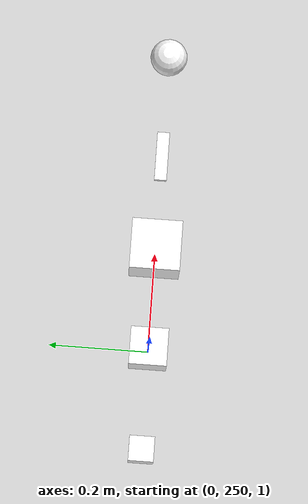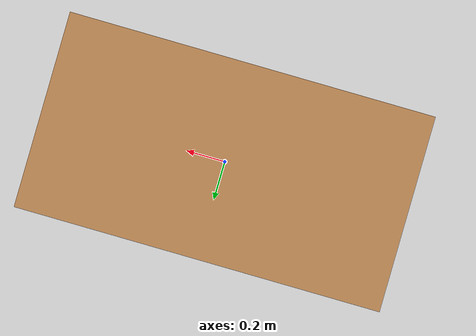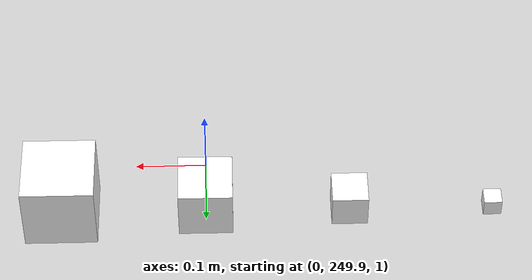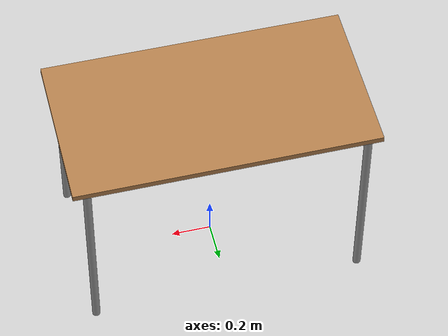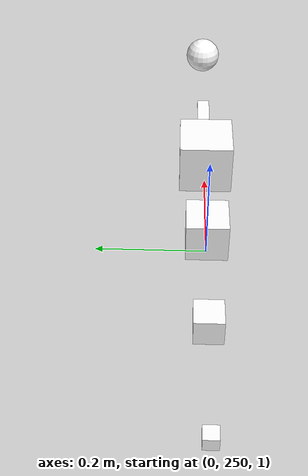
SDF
<?xml version="1.0" ?>
<sdf version="1.5">
  <world name="default">
    <!-- A global light source -->
    <include>
      <uri>model://sun</uri>
    </include>

    <!-- A ground plane -->
    <include>
      <uri>model://ground_plane</uri>
    </include>

    <include>
      <uri>model://table</uri>
    </include>

    <include>
      <uri>model://cricket_ball</uri>
      <pose> 0.6 250 1.015 0 0 0</pose>
    </include>

    <include>
      <uri>model://wood_block_10_2_1cm</uri>
      <pose> 0.4 250 1.015 0 0 0</pose>
    </include>

    <include>
      <uri>model://wood_cube_10cm</uri>
      <pose> 0.2 250 1.015 0 0 0</pose>
    </include>

    <include>
      <uri>model://wood_cube_7_5cm</uri>
      <pose> 0.0 250 1.015 0 0 0</pose>
    </include>

    <include>
      <uri>model://wood_cube_5cm</uri>
      <pose>-0.2 250 1.015 0 0 0</pose>
    </include>

    <include>
      <uri>model://wood_cube_2_5cm</uri>
      <pose>-0.4 250 1.015 0 0 0</pose>
    </include>

    <plugin name="arrange_plugin" filename="libArrangePlugin.so">
      <model_name>cricket_ball</model_name>
      <model_name>wood_block_10_2_1cm</model_name>
      <model_name>wood_cube_10cm</model_name>
      <model_name>wood_cube_7_5cm</model_name>
      <model_name>wood_cube_5cm</model_name>
      <model_name>wood_cube_2_5cm</model_name>
      <initial_arrangement>wood_blocks_stack</initial_arrangement>
      <topic_name>/gazebo/arat/control</topic_name>
      <arrangement name="default">
        <pose model="cricket_ball"       > 0.6 -0.25 1.015 0 0 0</pose>
        <pose model="wood_block_10_2_1cm"> 0.4 -0.25 1.015 0 0 0</pose>
        <pose model="wood_cube_10cm"     > 0.2 -0.25 1.015 0 0 0</pose>
        <pose model="wood_cube_7_5cm"    > 0.0 -0.25 1.015 0 0 0</pose>
        <pose model="wood_cube_5cm"      >-0.2 -0.25 1.015 0 0 0</pose>
        <pose model="wood_cube_2_5cm"    >-0.4 -0.25 1.015 0 0 0</pose>
      </arrangement>
      <arrangement name="cricket_ball">
        <pose model="cricket_ball"       > 0.6 -0.25 1.015 0 0 0</pose>
      </arrangement>
      <arrangement name="wood_blocks">
        <pose model="wood_block_10_2_1cm"> 0.4 -0.25 1.015 0 0 0</pose>
        <pose model="wood_cube_10cm"     > 0.2 -0.25 1.015 0 0 0</pose>
        <pose model="wood_cube_7_5cm"    > 0.0 -0.25 1.015 0 0 0</pose>
        <pose model="wood_cube_5cm"      >-0.2 -0.25 1.015 0 0 0</pose>
        <pose model="wood_cube_2_5cm"    >-0.4 -0.25 1.015 0 0 0</pose>
      </arrangement>
      <arrangement name="wood_blocks_stack">
        <pose model="wood_cube_10cm"     > 0.2 -0.25 1.015 0 0 0</pose>
        <pose model="wood_cube_7_5cm"    > 0.2 -0.25 1.115 0 0 0</pose>
        <pose model="wood_cube_5cm"      > 0.2 -0.25 1.215 0 0 0</pose>
        <pose model="wood_cube_2_5cm"    > 0.2 -0.25 1.315 0 0 0</pose>
        <pose model="wood_block_10_2_1cm"> 0.2 -0.25 1.415 0 0 0</pose>
      </arrangement>
    </plugin>
  </world>
</sdf>

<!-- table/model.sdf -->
<sdf version="1.5">
  <model name="table">
    <static>true</static>
    <link name="link">
      <collision name="surface">
        <pose>0 0 1.0 0 0 0</pose>
        <geometry>
          <box>
            <size>1.5 0.8 0.03</size>
          </box>
        </geometry>
        <surface>
          <friction>
            <ode>
              <mu>0.6</mu>
              <mu2>0.6</mu2>
            </ode>
          </friction>
        </surface>
      </collision>
      <visual name="visual1">
        <pose>0 0 1.0 0 0 0</pose>
        <geometry>
          <box>
            <size>1.5 0.8 0.03</size>
          </box>
        </geometry>
        <material>
          <script>
            <uri>model://media/materials/scripts/gazebo.material</uri>
            <name>Gazebo/Wood</name>
          </script>
        </material>
      </visual>
      <collision name="front_left_leg">
        <pose>0.68 0.38 0.5 0 0 0</pose>
        <geometry>
          <cylinder>
            <radius>0.02</radius>
            <length>1.0</length>
          </cylinder>
        </geometry>
      </collision>
      <visual name="front_left_leg">
        <pose>0.68 0.38 0.5 0 0 0</pose>
        <geometry>
          <cylinder>
            <radius>0.02</radius>
            <length>1.0</length>
          </cylinder>
        </geometry>
        <material>
          <script>
            <uri>model://media/materials/scripts/gazebo.material</uri>
            <name>Gazebo/Grey</name>
          </script>
        </material>
      </visual>
      <collision name="front_right_leg">
        <pose>0.68 -0.38 0.5 0 0 0</pose>
        <geometry>
          <cylinder>
            <radius>0.02</radius>
            <length>1.0</length>
          </cylinder>
        </geometry>
      </collision>
      <visual name="front_right_leg">
        <pose>0.68 -0.38 0.5 0 0 0</pose>
        <geometry>
          <cylinder>
            <radius>0.02</radius>
            <length>1.0</length>
          </cylinder>
        </geometry>
        <material>
          <script>
            <uri>model://media/materials/scripts/gazebo.material</uri>
            <name>Gazebo/Grey</name>
          </script>
        </material>
      </visual>
      <collision name="back_right_leg">
        <pose>-0.68 -0.38 0.5 0 0 0</pose>
        <geometry>
          <cylinder>
            <radius>0.02</radius>
            <length>1.0</length>
          </cylinder>
        </geometry>
      </collision>
      <visual name="back_right_leg">
        <pose>-0.68 -0.38 0.5 0 0 0</pose>
        <geometry>
          <cylinder>
            <radius>0.02</radius>
            <length>1.0</length>
          </cylinder>
        </geometry>
        <material>
          <script>
            <uri>model://media/materials/scripts/gazebo.material</uri>
            <name>Gazebo/Grey</name>
          </script>
        </material>
      </visual>
      <collision name="back_left_leg">
        <pose>-0.68 0.38 0.5 0 0 0</pose>
        <geometry>
          <cylinder>
            <radius>0.02</radius>
            <length>1.0</length>
          </cylinder>
        </geometry>
      </collision>
      <visual name="back_left_leg">
        <pose>-0.68 0.38 0.5 0 0 0</pose>
        <geometry>
          <cylinder>
            <radius>0.02</radius>
            <length>1.0</length>
          </cylinder>
        </geometry>
        <material>
          <script>
            <uri>model://media/materials/scripts/gazebo.material</uri>
            <name>Gazebo/Grey</name>
          </script>
        </material>
      </visual>
    </link>
  </model>
</sdf>

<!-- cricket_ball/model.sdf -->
<sdf version="1.5">
  <model name="cricket_ball">
    <link name="link">
      <pose>0 0 0.0375 0 0 0</pose>
      <inertial>
        <mass>0.1467</mass>
        <inertia>
          <ixx>8.251875e-05</ixx>
          <ixy>0</ixy>
          <ixz>0</ixz>
          <iyy>8.251875e-05</iyy>
          <iyz>0</iyz>
          <izz>8.251875e-05</izz>
        </inertia>
      </inertial>

      <collision name="collision">
        <geometry>
          <sphere>
            <radius>0.0375</radius>
          </sphere>
        </geometry>
        <surface>
          <contact>
            <!-- Red Pine coefficients for longitudinal axis of the wood
                 according to:
                 http://www.fpl.fs.fed.us/documnts/fplgtr/fplgtr113/ch04.pdf -->
            <poissons_ratio>0.347</poissons_ratio>
            <elastic_modulus>8.8e+09</elastic_modulus>
            <ode>
              <kp>100000</kp>
              <kd>100</kd>
              <max_vel>100.0</max_vel>
              <min_depth>0.001</min_depth>
            </ode>
          </contact>
          <friction>
            <torsional>
              <coefficient>1.0</coefficient>
              <use_patch_radius>0</use_patch_radius>
              <surface_radius>0.01</surface_radius>
            </torsional>
          </friction>
        </surface>
      </collision>

      <visual name="visual">
        <geometry>
          <sphere>
            <radius>0.0375</radius>
          </sphere>
        </geometry>
        <material><diffuse>1 1 1 1</diffuse><specular>0.1 0.1 0.1 1</specular></material>
      </visual>

      <!-- approximate rolling friction -->
      <velocity_decay>
        <linear>0.00</linear>
        <angular>0.005</angular>
      </velocity_decay>
    </link>
  </model>
</sdf>

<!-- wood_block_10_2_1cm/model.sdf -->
<sdf version="1.5">
  <model name="wood_block_10_2_1cm">
    <link name="link">
      <pose>0 0 0.005 0 0 0</pose>
      <inertial>
        <mass>0.0125</mass>
        <inertia>
          <ixx>7.552083333333335e-07</ixx>
          <ixy>0</ixy>
          <ixz>0</ixz>
          <iyy>1.0520833333333334e-05</iyy>
          <iyz>0</iyz>
          <izz>1.1067708333333336e-05</izz>
        </inertia>
      </inertial>

      <collision name="collision">
        <geometry>
          <box>
            <size>0.1 0.025 0.01</size>
          </box>
        </geometry>
        <surface>
          <contact>
            <!-- Red Pine coefficients for longitudinal axis of the wood
                 according to:
                 http://www.fpl.fs.fed.us/documnts/fplgtr/fplgtr113/ch04.pdf -->
            <poissons_ratio>0.347</poissons_ratio>
            <elastic_modulus>8.8e+09</elastic_modulus>
            <ode>
              <kp>100000</kp>
              <kd>1</kd>
              <max_vel>1.0</max_vel>
              <min_depth>0.001</min_depth>
            </ode>
          </contact>
          <friction>
            <torsional>
              <coefficient>1.0</coefficient>
              <use_patch_radius>0</use_patch_radius>
              <surface_radius>0.05</surface_radius>
            </torsional>
          </friction>
        </surface>
      </collision>

      <visual name="visual">
        <geometry>
          <box>
            <size>0.1 0.025 0.01</size>
          </box>
        </geometry>
        <material><diffuse>1 1 1 1</diffuse><specular>0.1 0.1 0.1 1</specular></material>
      </visual>

    </link>
  </model>
</sdf>

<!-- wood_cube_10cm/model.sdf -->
<sdf version="1.5">
  <model name="wood_cube_10cm">
    <link name="link">
      <pose>0 0 0.05 0 0 0</pose>
      <inertial>
        <mass>0.5167</mass>
        <inertia>
          <ixx>0.0008611666666666669</ixx>
          <ixy>0</ixy>
          <ixz>0</ixz>
          <iyy>0.0008611666666666669</iyy>
          <iyz>0</iyz>
          <izz>0.0008611666666666669</izz>
        </inertia>
      </inertial>

      <collision name="collision">
        <geometry>
          <box>
            <size>0.1 0.1 0.1</size>
          </box>
        </geometry>
        <surface>
          <contact>
            <!-- Red Pine coefficients for longitudinal axis of the wood
                 according to:
                 http://www.fpl.fs.fed.us/documnts/fplgtr/fplgtr113/ch04.pdf -->
            <poissons_ratio>0.347</poissons_ratio>
            <elastic_modulus>8.8e+09</elastic_modulus>
            <ode>
              <kp>100000</kp>
              <kd>100</kd>
              <max_vel>100.0</max_vel>
              <min_depth>0.001</min_depth>
            </ode>
          </contact>
          <friction>
            <torsional>
              <coefficient>1.0</coefficient>
              <use_patch_radius>0</use_patch_radius>
              <surface_radius>0.01</surface_radius>
            </torsional>
          </friction>
        </surface>
      </collision>

      <visual name="visual">
        <geometry>
          <box>
            <size>0.1 0.1 0.1</size>
          </box>
        </geometry>
        <material><diffuse>1 1 1 1</diffuse><specular>0.1 0.1 0.1 1</specular></material>
      </visual>

    </link>
  </model>
</sdf>

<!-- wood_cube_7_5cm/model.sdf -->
<sdf version="1.5">
  <model name="wood_cube_7_5cm">
    <link name="link">
      <pose>0 0 0.0375 0 0 0</pose>
      <inertial>
        <mass>0.2249</mass>
        <inertia>
          <ixx>0.00021084374999999999</ixx>
          <ixy>0</ixy>
          <ixz>0</ixz>
          <iyy>0.00021084374999999999</iyy>
          <iyz>0</iyz>
          <izz>0.00021084374999999999</izz>
        </inertia>
      </inertial>

      <collision name="collision">
        <geometry>
          <box>
            <size>0.075 0.075 0.075</size>
          </box>
        </geometry>
        <surface>
          <contact>
            <!-- Red Pine coefficients for longitudinal axis of the wood
                 according to:
                 http://www.fpl.fs.fed.us/documnts/fplgtr/fplgtr113/ch04.pdf -->
            <poissons_ratio>0.347</poissons_ratio>
            <elastic_modulus>8.8e+09</elastic_modulus>
            <ode>
              <kp>100000</kp>
              <kd>100</kd>
              <max_vel>100.0</max_vel>
              <min_depth>0.001</min_depth>
            </ode>
          </contact>
          <friction>
            <torsional>
              <coefficient>1.0</coefficient>
              <use_patch_radius>0</use_patch_radius>
              <surface_radius>0.01</surface_radius>
            </torsional>
          </friction>
        </surface>
      </collision>

      <visual name="visual">
        <geometry>
          <box>
            <size>0.075 0.075 0.075</size>
          </box>
        </geometry>
        <material><diffuse>1 1 1 1</diffuse><specular>0.1 0.1 0.1 1</specular></material>
      </visual>

    </link>
  </model>
</sdf>

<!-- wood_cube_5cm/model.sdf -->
<sdf version="1.5">
  <model name="wood_cube_5cm">
    <link name="link">
      <pose>0 0 0.025 0 0 0</pose>
      <inertial>
        <mass>0.0565</mass>
        <inertia>
          <ixx>2.3541666666666672e-05</ixx>
          <ixy>0</ixy>
          <ixz>0</ixz>
          <iyy>2.3541666666666672e-05</iyy>
          <iyz>0</iyz>
          <izz>2.3541666666666672e-05</izz>
        </inertia>
      </inertial>

      <collision name="collision">
        <geometry>
          <box>
            <size>0.05 0.05 0.05</size>
          </box>
        </geometry>
        <surface>
          <contact>
            <!-- Red Pine coefficients for longitudinal axis of the wood
                 according to:
                 http://www.fpl.fs.fed.us/documnts/fplgtr/fplgtr113/ch04.pdf -->
            <poissons_ratio>0.347</poissons_ratio>
            <elastic_modulus>8.8e+09</elastic_modulus>
            <ode>
              <kp>100000</kp>
              <kd>1</kd>
              <max_vel>1.0</max_vel>
              <min_depth>0.001</min_depth>
            </ode>
          </contact>
          <friction>
            <torsional>
              <coefficient>1.0</coefficient>
              <use_patch_radius>0</use_patch_radius>
              <surface_radius>0.05</surface_radius>
            </torsional>
          </friction>
        </surface>
      </collision>

      <visual name="visual">
        <geometry>
          <box>
            <size>0.05 0.05 0.05</size>
          </box>
        </geometry>
        <material><diffuse>1 1 1 1</diffuse><specular>0.1 0.1 0.1 1</specular></material>
      </visual>

    </link>
  </model>
</sdf>

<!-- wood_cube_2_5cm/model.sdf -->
<sdf version="1.5">
  <model name="wood_cube_2_5cm">
    <link name="link">
      <pose>0 0 0.0125 0 0 0</pose>
      <inertial>
        <mass>0.0073</mass>
        <inertia>
          <ixx>7.604166666666669e-07</ixx>
          <ixy>0</ixy>
          <ixz>0</ixz>
          <iyy>7.604166666666669e-07</iyy>
          <iyz>0</iyz>
          <izz>7.604166666666669e-07</izz>
        </inertia>
      </inertial>

      <collision name="collision">
        <geometry>
          <box>
            <size>0.025 0.025 0.025</size>
          </box>
        </geometry>
        <surface>
          <contact>
            <!-- Red Pine coefficients for longitudinal axis of the wood
                 according to:
                 http://www.fpl.fs.fed.us/documnts/fplgtr/fplgtr113/ch04.pdf -->
            <poissons_ratio>0.347</poissons_ratio>
            <elastic_modulus>8.8e+09</elastic_modulus>
            <ode>
              <kp>100000</kp>
              <kd>100</kd>
              <max_vel>100.0</max_vel>
              <min_depth>0.001</min_depth>
            </ode>
          </contact>
          <friction>
            <torsional>
              <coefficient>1.0</coefficient>
              <use_patch_radius>0</use_patch_radius>
              <surface_radius>0.01</surface_radius>
            </torsional>
          </friction>
        </surface>
      </collision>

      <visual name="visual">
        <geometry>
          <box>
            <size>0.025 0.025 0.025</size>
          </box>
        </geometry>
        <material><diffuse>1 1 1 1</diffuse><specular>0.1 0.1 0.1 1</specular></material>
      </visual>

    </link>
  </model>
</sdf>
